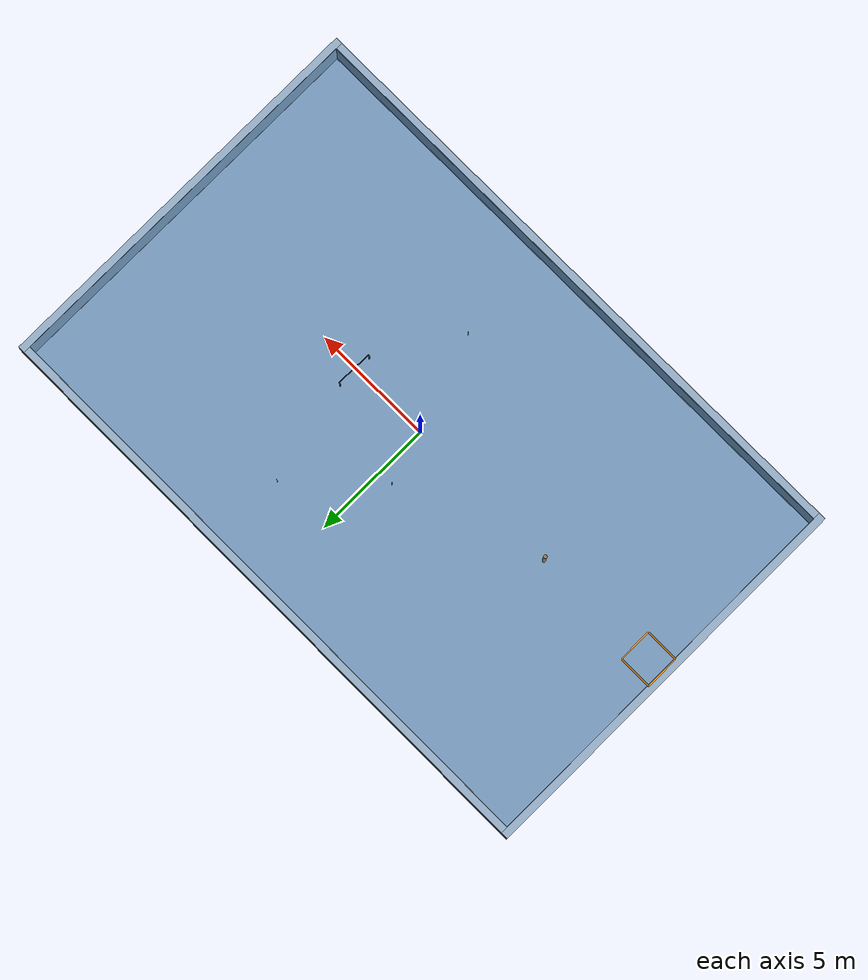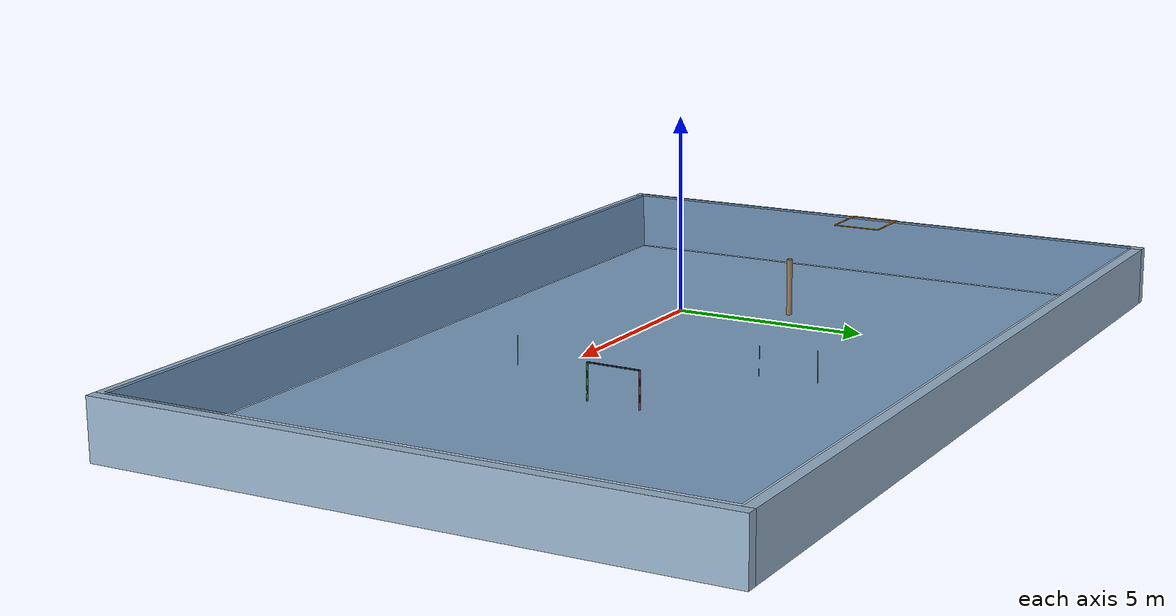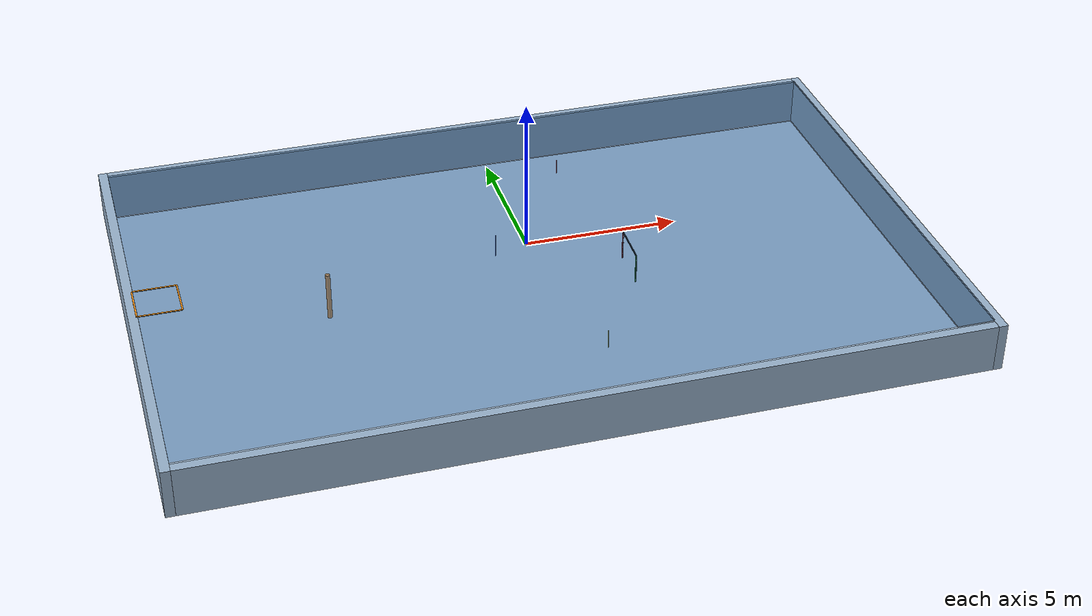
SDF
<sdf version="1.8">
 <world name="sauvc_competition_world">
  <plugin filename="gz-sim-physics-system" name="gz::sim::systems::Physics"/>
  <plugin filename="gz-sim-user-commands-system" name="gz::sim::systems::UserCommands"/>
  <plugin filename="gz-sim-scene-broadcaster-system" name="gz::sim::systems::SceneBroadcaster"/>
  <plugin filename="gz-sim-sensors-system" name="gz::sim::systems::Sensors">
   <render_engine>ogre2</render_engine>
  </plugin>
  <plugin filename="libgz-sim-imu-system.so" name="gz::sim::systems::Imu"/>
  <plugin filename="gz-sim-buoyancy-system" name="gz::sim::systems::Buoyancy">
   <graded_buoyancy>
    <default_density>1000</default_density>
    <density_change><above_depth>0</above_depth><density>1.2</density></density_change>
   </graded_buoyancy>
   <enable>bluerov2</enable>
  </plugin>
  <gravity>0 0 -9.81</gravity>
  <magnetic_field>6e-6 2.3e-5 -4.2e-5</magnetic_field>
  <atmosphere type="adiabatic"/>
  <scene>
   <ambient>0.3 0.4 0.5 1</ambient>
   <background>0.1 0.3 0.5 1</background>
   <shadows>true</shadows>
   <fog><color>0.2 0.4 0.5 1</color><type>linear</type><start>1</start><end>30</end><density>0.02</density></fog>
  </scene>
  <physics name="default" type="dart">
   <max_step_size>0.001</max_step_size>
   <real_time_factor>1.0</real_time_factor>
   <real_time_update_rate>1000</real_time_update_rate>
  </physics>
  <light type="directional" name="sun">
   <pose>0 0 10 0 0 0</pose>
   <diffuse>0.8 0.8 0.8 1</diffuse>
   <specular>0.2 0.2 0.2 1</specular>
   <direction>-0.5 0.1 -0.9</direction>
  </light>
  <light type="directional" name="underwater_light">
   <cast_shadows>false</cast_shadows>
   <pose>0 0 5 0 0 0</pose>
   <diffuse>0.6 0.7 0.8 1</diffuse>
   <specular>0.3 0.3 0.4 1</specular>
   <direction>0 0.2 -1</direction>
  </light>
  <model name="pool_structure">
   <static>true</static>
   <pose>0 0 -1.65 0 0 0</pose>
   <include><uri>model://pool_floor</uri></include>
   <link name="wall_east">
    <pose>12.65 0 0.8 0 0 0</pose>
    <collision name="collision"><geometry><box><size>0.3 16.6 1.6</size></box></geometry></collision>
    <visual name="visual">
     <geometry><box><size>0.3 16.6 1.6</size></box></geometry>
     <material>
      <ambient>0.5 0.6 0.7 1</ambient>
      <diffuse>0.6 0.7 0.8 1</diffuse>
      <specular>0.2 0.2 0.2 1</specular>
     </material>
    </visual>
   </link>
   <link name="wall_west">
    <pose>-12.65 0 0.8 0 0 0</pose>
    <collision name="collision"><geometry><box><size>0.3 16.6 1.6</size></box></geometry></collision>
    <visual name="visual">
     <geometry><box><size>0.3 16.6 1.6</size></box></geometry>
     <material>
      <ambient>0.5 0.6 0.7 1</ambient>
      <diffuse>0.6 0.7 0.8 1</diffuse>
      <specular>0.2 0.2 0.2 1</specular>
     </material>
    </visual>
   </link>
   <link name="wall_north">
    <pose>0 8.15 0.8 0 0 0</pose>
    <collision name="collision"><geometry><box><size>25 0.3 1.6</size></box></geometry></collision>
    <visual name="visual">
     <geometry><box><size>25 0.3 1.6</size></box></geometry>
     <material>
      <ambient>0.5 0.6 0.7 1</ambient>
      <diffuse>0.6 0.7 0.8 1</diffuse>
      <specular>0.2 0.2 0.2 1</specular>
     </material>
    </visual>
   </link>
   <link name="wall_south">
    <pose>0 -8.15 0.8 0 0 0</pose>
    <collision name="collision"><geometry><box><size>25 0.3 1.6</size></box></geometry></collision>
    <visual name="visual">
     <geometry><box><size>25 0.3 1.6</size></box></geometry>
     <material>
      <ambient>0.5 0.6 0.7 1</ambient>
      <diffuse>0.6 0.7 0.8 1</diffuse>
      <specular>0.2 0.2 0.2 1</specular>
     </material>
    </visual>
   </link>
  </model>
  <model name="water_surface">
   <static>true</static>
   <link name="water_link">
    <visual name="water_visual">
     <geometry><box><size>25 16 0.01</size></box></geometry>
     <material>
      <ambient>0.1 0.3 0.5 0.6</ambient>
      <diffuse>0.2 0.4 0.6 0.4</diffuse>
      <specular>0.8 0.8 0.8 1</specular>
     </material>
     <transparency>0.5</transparency>
    </visual>
   </link>
  </model>
  <include>
   <uri>model://starting_zone</uri>
   <name>starting_zone</name>
   <pose>-11.83 0 0 0 0 0</pose>
   <static>true</static>
  </include>
  <include>
   <uri>model://gate</uri>
   <name>finals_gate</name>
   <pose>3.5 0 -1.6 0 0 -1.6</pose>
   <static>true</static>
  </include>
  <include>
   <uri>model://orange_flare</uri>
   <name>orange_flare_1</name>
   <pose>-6.5 0 -1.6 0 0 0</pose>
   <static>true</static>
  </include>
  <include>
   <uri>model://red_flare</uri>
   <name>red_flare_1</name>
   <pose>2.5 5 -.6 0 0 0</pose>
   <static>true</static>
  </include>
  <include>
   <uri>model://yellow_flare</uri>
   <name>yellow_flare_1</name>
   <pose>1.5 -4 -1.6 0 0 0</pose>
   <static>true</static>
  </include>
  <include>
   <uri>model://blue_flare</uri>
   <name>blue_flare_1</name>
   <pose>-0.5 2 -1.6 0 0 0</pose>
   <static>true</static>
  </include>
 </world>
</sdf>

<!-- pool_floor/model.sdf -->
<sdf version="1.8">
  <!-- SAUVC 2026 Pool Floor
       Dimensions: 25m x 16m with realistic pool tiles texture
  -->
  <model name="pool_floor">
    <static>true</static>

    <link name="floor">
      <pose>0 0 0 0 0 0</pose>
      <inertial>
        <mass>1000</mass>
        <inertia>
          <ixx>1000</ixx><ixy>0</ixy><ixz>0</ixz>
          <iyy>1000</iyy><iyz>0</iyz><izz>1000</izz>
        </inertia>
      </inertial>

      <visual name="floor_visual">
        <geometry>
          <plane>
            <normal>0 0 1</normal>
            <size>25.0 16.0</size>
          </plane>
        </geometry>
        <material>
          <ambient>0.7 0.8 0.9 1</ambient>
          <diffuse>0.7 0.8 0.9 1</diffuse>
          <specular>0.3 0.3 0.3 1</specular>
          <emissive>0 0 0 1</emissive>
          <pbr>
            <metal>
              <albedo_map>model://pool_floor/materials/textures/pool_bottom_tiles_half_size.png</albedo_map>
            </metal>
          </pbr>
        </material>
      </visual>

      <collision name="floor_collision">
        <geometry>
          <box>
            <size>25.0 16.0 0.1</size>
          </box>
        </geometry>
      </collision>
    </link>

  </model>
</sdf>

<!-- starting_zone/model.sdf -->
<sdf version="1.8">
  <!-- SAUVC 2026 Starting Zone
       140cm x 140cm marker at water surface
       Semi-transparent orange
  -->
  <model name="starting_zone">
    <static>true</static>

    <link name="marker">
      <pose>0 0 0.01 0 0 0</pose>
      <inertial>
        <mass>0.5</mass>
        <inertia>
          <ixx>0.01</ixx><ixy>0</ixy><ixz>0</ixz>
          <iyy>0.01</iyy><iyz>0</iyz><izz>0.01</izz>
        </inertia>
      </inertial>

      <!-- Outer frame -->
      <visual name="frame_north">
        <pose>0 0.7 0 0 0 0</pose>
        <geometry>
          <box>
            <size>1.4 0.05 0.02</size>
          </box>
        </geometry>
        <material>
          <ambient>1 0.5 0 1</ambient>
          <diffuse>1 0.6 0.1 1</diffuse>
        </material>
      </visual>

      <visual name="frame_south">
        <pose>0 -0.7 0 0 0 0</pose>
        <geometry>
          <box>
            <size>1.4 0.05 0.02</size>
          </box>
        </geometry>
        <material>
          <ambient>1 0.5 0 1</ambient>
          <diffuse>1 0.6 0.1 1</diffuse>
        </material>
      </visual>

      <visual name="frame_east">
        <pose>0.7 0 0 0 0 0</pose>
        <geometry>
          <box>
            <size>0.05 1.4 0.02</size>
          </box>
        </geometry>
        <material>
          <ambient>1 0.5 0 1</ambient>
          <diffuse>1 0.6 0.1 1</diffuse>
        </material>
      </visual>

      <visual name="frame_west">
        <pose>-0.7 0 0 0 0 0</pose>
        <geometry>
          <box>
            <size>0.05 1.4 0.02</size>
          </box>
        </geometry>
        <material>
          <ambient>1 0.5 0 1</ambient>
          <diffuse>1 0.6 0.1 1</diffuse>
        </material>
      </visual>
    </link>

  </model>
</sdf>

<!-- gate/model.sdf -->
<sdf version='1.7'>
  <model name='gate'>
    <link name='link_0'>
      <inertial>
        <mass>1</mass>
        <inertia>
          <ixx>0.145833</ixx>
          <ixy>0</ixy>
          <ixz>0</ixz>
          <iyy>0.145833</iyy>
          <iyz>0</iyz>
          <izz>0.125</izz>
        </inertia>
        <pose>0 0 0 0 -0 0</pose>
      </inertial>
      <pose>-0.75 0 0.5 0 -0 0</pose>
      <gravity>1</gravity>
      <self_collide>0</self_collide>
      <kinematic>0</kinematic>
      <enable_wind>0</enable_wind>
      <visual name='ModelPreview_4-link_0-visual_3'>
        <pose>0 0 -0.4 0 -0 0</pose>
        <geometry>
          <cylinder>
            <radius>0.025</radius>
            <length>0.2</length>
          </cylinder>
        </geometry>
        <material>
          <lighting>1</lighting>
          <script>
            <uri>file://media/materials/scripts/gazebo.material</uri>
            <name>Gazebo/Red</name>
          </script>
          <shader type='pixel'>
            <normal_map>__default__</normal_map>
          </shader>
          <ambient>0.05 0.05 0.05 1</ambient>
          <diffuse>0.1 0.1 0.1 1</diffuse>
          <specular>0.01 0.01 0.01 1</specular>
          <emissive>0 0 0 1</emissive>
        </material>
        <transparency>0</transparency>
        <cast_shadows>1</cast_shadows>
      </visual>
      <visual name='ModelPreview_1-link_0-visual_1'>
        <pose>0 0 0 0 -0 0</pose>
        <geometry>
          <cylinder>
            <radius>0.025</radius>
            <length>0.2</length>
          </cylinder>
        </geometry>
        <material>
          <lighting>1</lighting>
          <script>
            <uri>file://media/materials/scripts/gazebo.material</uri>
            <name>Gazebo/Red</name>
          </script>
          <shader type='pixel'>
            <normal_map>__default__</normal_map>
          </shader>
          <ambient>0.05 0.05 0.05 1</ambient>
          <diffuse>0.1 0.1 0.1 1</diffuse>
          <specular>0.01 0.01 0.01 1</specular>
          <emissive>0 0 0 1</emissive>
        </material>
        <transparency>0</transparency>
        <cast_shadows>1</cast_shadows>
      </visual>
      <visual name='visual'>
        <pose>0 0 0 0 -0 0</pose>
        <geometry>
          <cylinder>
            <radius>0.02</radius>
            <length>1.0</length>
          </cylinder>
        </geometry>
        <material>
          <lighting>1</lighting>
          <script>
            <uri>file://media/materials/scripts/gazebo.material</uri>
            <name>Gazebo/Red</name>
          </script>
          <shader type='pixel'>
            <normal_map>__default__</normal_map>
          </shader>
          <ambient>0.5 0.1 0.1 1</ambient>
          <diffuse>1 0.2 0.2 1</diffuse>
          <specular>0.01 0.01 0.01 1</specular>
          <emissive>0 0 0 1</emissive>
        </material>
        <transparency>0</transparency>
        <cast_shadows>1</cast_shadows>
      </visual>
      <visual name='ModelPreview_4-link_0-visual_2'>
        <pose>0 0 0.4 0 -0 0</pose>
        <geometry>
          <cylinder>
            <radius>0.025</radius>
            <length>0.2</length>
          </cylinder>
        </geometry>
        <material>
          <lighting>1</lighting>
          <script>
            <uri>file://media/materials/scripts/gazebo.material</uri>
            <name>Gazebo/Red</name>
          </script>
          <shader type='pixel'>
            <normal_map>__default__</normal_map>
          </shader>
          <ambient>0.05 0.05 0.05 1</ambient>
          <diffuse>0.1 0.1 0.1 1</diffuse>
          <specular>0.01 0.01 0.01 1</specular>
          <emissive>0 0 0 1</emissive>
        </material>
        <transparency>0</transparency>
        <cast_shadows>1</cast_shadows>
      </visual>
      <collision name='collision'>
        <laser_retro>0</laser_retro>
        <max_contacts>10</max_contacts>
        <pose>0 0 0 0 -0 0</pose>
        <geometry>
          <cylinder>
            <radius>0.02</radius>
            <length>1.0</length>
          </cylinder>
        </geometry>
        <surface>
          <friction>
            <ode>
              <mu>1</mu>
              <mu2>1</mu2>
              <fdir1>0 0 0</fdir1>
              <slip1>0</slip1>
              <slip2>0</slip2>
            </ode>
            <torsional>
              <coefficient>1</coefficient>
              <patch_radius>0</patch_radius>
              <surface_radius>0</surface_radius>
              <use_patch_radius>1</use_patch_radius>
              <ode>
                <slip>0</slip>
              </ode>
            </torsional>
          </friction>
          <bounce>
            <restitution_coefficient>0</restitution_coefficient>
            <threshold>1e+06</threshold>
          </bounce>
          <contact>
            <collide_without_contact>0</collide_without_contact>
            <collide_without_contact_bitmask>1</collide_without_contact_bitmask>
            <collide_bitmask>1</collide_bitmask>
            <ode>
              <soft_cfm>0</soft_cfm>
              <soft_erp>0.2</soft_erp>
              <kp>1e+13</kp>
              <kd>1</kd>
              <max_vel>0.01</max_vel>
              <min_depth>0</min_depth>
            </ode>
            <bullet>
              <split_impulse>1</split_impulse>
              <split_impulse_penetration_threshold>-0.01</split_impulse_penetration_threshold>
              <soft_cfm>0</soft_cfm>
              <soft_erp>0.2</soft_erp>
              <kp>1e+13</kp>
              <kd>1</kd>
            </bullet>
          </contact>
        </surface>
      </collision>
    </link>
    <link name='link_0_clone'>
      <inertial>
        <mass>1</mass>
        <inertia>
          <ixx>0.145833</ixx>
          <ixy>0</ixy>
          <ixz>0</ixz>
          <iyy>0.145833</iyy>
          <iyz>0</iyz>
          <izz>0.125</izz>
        </inertia>
        <pose>0 0 0 0 -0 0</pose>
      </inertial>
      <pose>0.75 0 0.5 0 -0 0</pose>
      <gravity>1</gravity>
      <self_collide>0</self_collide>
      <kinematic>0</kinematic>
      <enable_wind>0</enable_wind>
      <visual name='ModelPreview_4-link_0_clone-visual_1'>
        <pose>0 0 0.4 0 -0 0</pose>
        <geometry>
          <cylinder>
            <radius>0.025</radius>
            <length>0.2</length>
          </cylinder>
        </geometry>
        <material>
          <lighting>1</lighting>
          <script>
            <uri>file://media/materials/scripts/gazebo.material</uri>
            <name>Gazebo/Green</name>
          </script>
          <shader type='pixel'>
            <normal_map>__default__</normal_map>
          </shader>
          <ambient>0.05 0.05 0.05 1</ambient>
          <diffuse>0.1 0.1 0.1 1</diffuse>
          <specular>0.01 0.01 0.01 1</specular>
          <emissive>0 0 0 1</emissive>
        </material>
        <transparency>0</transparency>
        <cast_shadows>1</cast_shadows>
      </visual>
      <visual name='ModelPreview_4-link_0_clone-visual_3'>
        <pose>0 0 -0.4 0 -0 0</pose>
        <geometry>
          <cylinder>
            <radius>0.025</radius>
            <length>0.2</length>
          </cylinder>
        </geometry>
        <material>
          <lighting>1</lighting>
          <script>
            <uri>file://media/materials/scripts/gazebo.material</uri>
            <name>Gazebo/Green</name>
          </script>
          <shader type='pixel'>
            <normal_map>__default__</normal_map>
          </shader>
          <ambient>0.05 0.05 0.05 1</ambient>
          <diffuse>0.1 0.1 0.1 1</diffuse>
          <specular>0.01 0.01 0.01 1</specular>
          <emissive>0 0 0 1</emissive>
        </material>
        <transparency>0</transparency>
        <cast_shadows>1</cast_shadows>
      </visual>
      <visual name='visual'>
        <pose>0 0 0 0 -0 0</pose>
        <geometry>
          <cylinder>
            <radius>0.02</radius>
            <length>1.0</length>
          </cylinder>
        </geometry>
        <material>
          <lighting>1</lighting>
          <script>
            <uri>file://media/materials/scripts/gazebo.material</uri>
            <name>Gazebo/Green</name>
          </script>
          <shader type='pixel'>
            <normal_map>__default__</normal_map>
          </shader>
          <ambient>0.1 0.5 0.1 1</ambient>
          <diffuse>0.2 1 0.2 1</diffuse>
          <specular>0.01 0.01 0.01 1</specular>
          <emissive>0 0 0 1</emissive>
        </material>
        <transparency>0</transparency>
        <cast_shadows>1</cast_shadows>
      </visual>
      <visual name='ModelPreview_4-link_0_clone-visual_2'>
        <pose>0 0 0 0 -0 0</pose>
        <geometry>
          <cylinder>
            <radius>0.025</radius>
            <length>0.2</length>
          </cylinder>
        </geometry>
        <material>
          <lighting>1</lighting>
          <script>
            <uri>file://media/materials/scripts/gazebo.material</uri>
            <name>Gazebo/Green</name>
          </script>
          <shader type='pixel'>
            <normal_map>__default__</normal_map>
          </shader>
          <ambient>0.05 0.05 0.05 1</ambient>
          <diffuse>0.1 0.1 0.1 1</diffuse>
          <specular>0.01 0.01 0.01 1</specular>
          <emissive>0 0 0 1</emissive>
        </material>
        <transparency>0</transparency>
        <cast_shadows>1</cast_shadows>
      </visual>
      <collision name='collision'>
        <laser_retro>0</laser_retro>
        <max_contacts>10</max_contacts>
        <pose>0 0 0 0 -0 0</pose>
        <geometry>
          <cylinder>
            <radius>0.02</radius>
            <length>1.5</length>
          </cylinder>
        </geometry>
        <surface>
          <friction>
            <ode>
              <mu>1</mu>
              <mu2>1</mu2>
              <fdir1>0 0 0</fdir1>
              <slip1>0</slip1>
              <slip2>0</slip2>
            </ode>
            <torsional>
              <coefficient>1</coefficient>
              <patch_radius>0</patch_radius>
              <surface_radius>0</surface_radius>
              <use_patch_radius>1</use_patch_radius>
              <ode>
                <slip>0</slip>
              </ode>
            </torsional>
          </friction>
          <bounce>
            <restitution_coefficient>0</restitution_coefficient>
            <threshold>1e+06</threshold>
          </bounce>
          <contact>
            <collide_without_contact>0</collide_without_contact>
            <collide_without_contact_bitmask>1</collide_without_contact_bitmask>
            <collide_bitmask>1</collide_bitmask>
            <ode>
              <soft_cfm>0</soft_cfm>
              <soft_erp>0.2</soft_erp>
              <kp>1e+13</kp>
              <kd>1</kd>
              <max_vel>0.01</max_vel>
              <min_depth>0</min_depth>
            </ode>
            <bullet>
              <split_impulse>1</split_impulse>
              <split_impulse_penetration_threshold>-0.01</split_impulse_penetration_threshold>
              <soft_cfm>0</soft_cfm>
              <soft_erp>0.2</soft_erp>
              <kp>1e+13</kp>
              <kd>1</kd>
            </bullet>
          </contact>
        </surface>
      </collision>
    </link>
    <link name='link_0_clone_0'>
      <inertial>
        <mass>1</mass>
        <inertia>
          <ixx>0.145833</ixx>
          <ixy>0</ixy>
          <ixz>0</ixz>
          <iyy>0.145833</iyy>
          <iyz>0</iyz>
          <izz>0.125</izz>
        </inertia>
        <pose>0 0 0 0 -0 0</pose>
      </inertial>
      <pose>0 0 1.0 3.14159 -1.57079 3.14159</pose>
      <gravity>1</gravity>
      <self_collide>0</self_collide>
      <kinematic>0</kinematic>
      <enable_wind>0</enable_wind>
      <visual name='visual'>
        <pose>0 0 0 0 -0 0</pose>
        <geometry>
          <cylinder>
            <radius>0.02</radius>
            <length>1.5</length>
          </cylinder>
        </geometry>
        <material>
          <lighting>1</lighting>
          <script>
            <uri>file://media/materials/scripts/gazebo.material</uri>
            <name>Gazebo/Black</name>
          </script>
          <shader type='pixel'>
            <normal_map>__default__</normal_map>
          </shader>
          <ambient>0.05 0.05 0.05 1</ambient>
          <diffuse>0.1 0.1 0.1 1</diffuse>
          <specular>0.01 0.01 0.01 1</specular>
          <emissive>0 0 0 1</emissive>
        </material>
        <transparency>0</transparency>
        <cast_shadows>1</cast_shadows>
      </visual>
      <collision name='collision'>
        <laser_retro>0</laser_retro>
        <max_contacts>10</max_contacts>
        <pose>0 0 0 0 -0 0</pose>
        <geometry>
          <cylinder>
            <radius>0.02</radius>
            <length>1.5</length>
          </cylinder>
        </geometry>
        <surface>
          <friction>
            <ode>
              <mu>1</mu>
              <mu2>1</mu2>
              <fdir1>0 0 0</fdir1>
              <slip1>0</slip1>
              <slip2>0</slip2>
            </ode>
            <torsional>
              <coefficient>1</coefficient>
              <patch_radius>0</patch_radius>
              <surface_radius>0</surface_radius>
              <use_patch_radius>1</use_patch_radius>
              <ode>
                <slip>0</slip>
              </ode>
            </torsional>
          </friction>
          <bounce>
            <restitution_coefficient>0</restitution_coefficient>
            <threshold>1e+06</threshold>
          </bounce>
          <contact>
            <collide_without_contact>0</collide_without_contact>
            <collide_without_contact_bitmask>1</collide_without_contact_bitmask>
            <collide_bitmask>1</collide_bitmask>
            <ode>
              <soft_cfm>0</soft_cfm>
              <soft_erp>0.2</soft_erp>
              <kp>1e+13</kp>
              <kd>1</kd>
              <max_vel>0.01</max_vel>
              <min_depth>0</min_depth>
            </ode>
            <bullet>
              <split_impulse>1</split_impulse>
              <split_impulse_penetration_threshold>-0.01</split_impulse_penetration_threshold>
              <soft_cfm>0</soft_cfm>
              <soft_erp>0.2</soft_erp>
              <kp>1e+13</kp>
              <kd>1</kd>
            </bullet>
          </contact>
        </surface>
      </collision>
    </link>
    <joint name='link_0_clone_0_JOINT_0' type='fixed'>
      <parent>link_0_clone_0</parent>
      <child>link_0</child>
      <pose>0 0 0 0 -0 0</pose>
      <physics>
        <ode>
          <limit>
            <cfm>0</cfm>
            <erp>0.2</erp>
          </limit>
          <suspension>
            <cfm>0</cfm>
            <erp>0.2</erp>
          </suspension>
        </ode>
      </physics>
    </joint>
    <joint name='link_0_clone_0_JOINT_1' type='fixed'>
      <parent>link_0_clone_0</parent>
      <child>link_0_clone</child>
      <pose>0 0 0 0 -0 0</pose>
      <physics>
        <ode>
          <limit>
            <cfm>0</cfm>
            <erp>0.2</erp>
          </limit>
          <suspension>
            <cfm>0</cfm>
            <erp>0.2</erp>
          </suspension>
        </ode>
      </physics>
    </joint>
    <static>1</static>
    <allow_auto_disable>1</allow_auto_disable>
  </model>
</sdf>

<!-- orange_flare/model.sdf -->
<sdf version="1.8">
  <!-- SAUVC 2026 Orange Flare
       Diameter: ~15cm, Height: 1.6m (bottom to top of pool)
       Color: Orange
  -->
  <model name="orange_flare">
    <static>true</static>

    <link name="flare">
      <pose>0 0 0.8 0 0 0</pose>
      <inertial>
        <mass>1.0</mass>
        <inertia>
          <ixx>0.1</ixx><ixy>0</ixy><ixz>0</ixz>
          <iyy>0.1</iyy><iyz>0</iyz><izz>0.01</izz>
        </inertia>
      </inertial>

      <visual name="flare_visual">
        <geometry>
          <cylinder>
            <radius>0.075</radius>
            <length>1.6</length>
          </cylinder>
        </geometry>
        <material>
          <ambient>0.902 0.569 0.216 1</ambient>
          <diffuse>0.902 0.569 0.216 1</diffuse>
          <specular>0.4 0.3 0.1 1</specular>
        </material>
      </visual>

      <collision name="flare_collision">
        <geometry>
          <cylinder>
            <radius>0.075</radius>
            <length>1.6</length>
          </cylinder>
        </geometry>
      </collision>
    </link>

  </model>
</sdf>

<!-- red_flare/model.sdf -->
<sdf version="1.8">
  <!-- SAUVC 2026 Red Flare
       Diameter: ~1.6cm, Height: 80cm
       Color: Red
  -->
  <model name="red_flare">
    <static>true</static>

    <link name="flare">
      <pose>0 0 0.4 0 0 0</pose>
      <inertial>
        <mass>0.1</mass>
        <inertia>
          <ixx>0.005</ixx><ixy>0</ixy><ixz>0</ixz>
          <iyy>0.005</iyy><iyz>0</iyz><izz>0.0001</izz>
        </inertia>
      </inertial>

      <visual name="flare_visual">
        <geometry>
          <cylinder>
            <radius>0.008</radius>
            <length>0.8</length>
          </cylinder>
        </geometry>
        <material>
          <ambient>0.9 0.1 0.1 1</ambient>
          <diffuse>1 0.2 0.2 1</diffuse>
          <specular>0.3 0.3 0.3 1</specular>
        </material>
      </visual>

      <collision name="flare_collision">
        <geometry>
          <cylinder>
            <radius>0.008</radius>
            <length>0.8</length>
          </cylinder>
        </geometry>
      </collision>
    </link>

  </model>
</sdf>

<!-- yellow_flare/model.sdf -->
<sdf version="1.8">
  <!-- SAUVC 2026 Yellow Flare
       Diameter: ~1.6cm, Height: 80cm
       Color: Yellow
  -->
  <model name="yellow_flare">
    <static>true</static>

    <link name="flare">
      <pose>0 0 0.4 0 0 0</pose>
      <inertial>
        <mass>0.1</mass>
        <inertia>
          <ixx>0.005</ixx><ixy>0</ixy><ixz>0</ixz>
          <iyy>0.005</iyy><iyz>0</iyz><izz>0.0001</izz>
        </inertia>
      </inertial>

      <visual name="flare_visual">
        <geometry>
          <cylinder>
            <radius>0.008</radius>
            <length>0.8</length>
          </cylinder>
        </geometry>
        <material>
          <ambient>1 0.9 0.1 1</ambient>
          <diffuse>1 1 0.2 1</diffuse>
          <specular>0.3 0.3 0.3 1</specular>
        </material>
      </visual>

      <collision name="flare_collision">
        <geometry>
          <cylinder>
            <radius>0.008</radius>
            <length>0.8</length>
          </cylinder>
        </geometry>
      </collision>
    </link>

  </model>
</sdf>

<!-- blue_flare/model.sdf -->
<sdf version="1.8">
  <!-- SAUVC 2026 Blue Flare
       Diameter: ~1.6cm, Height: 80cm
       Color: Blue
  -->
  <model name="blue_flare">
    <static>true</static>

    <link name="flare">
      <pose>0 0 0.4 0 0 0</pose>
      <inertial>
        <mass>0.1</mass>
        <inertia>
          <ixx>0.005</ixx><ixy>0</ixy><ixz>0</ixz>
          <iyy>0.005</iyy><iyz>0</iyz><izz>0.0001</izz>
        </inertia>
      </inertial>

      <visual name="flare_visual">
        <geometry>
          <cylinder>
            <radius>0.008</radius>
            <length>0.8</length>
          </cylinder>
        </geometry>
        <material>
          <ambient>0.1 0.3 0.9 1</ambient>
          <diffuse>0.2 0.4 1 1</diffuse>
          <specular>0.3 0.3 0.3 1</specular>
        </material>
      </visual>

      <collision name="flare_collision">
        <geometry>
          <cylinder>
            <radius>0.008</radius>
            <length>0.8</length>
          </cylinder>
        </geometry>
      </collision>
    </link>

  </model>
</sdf>
